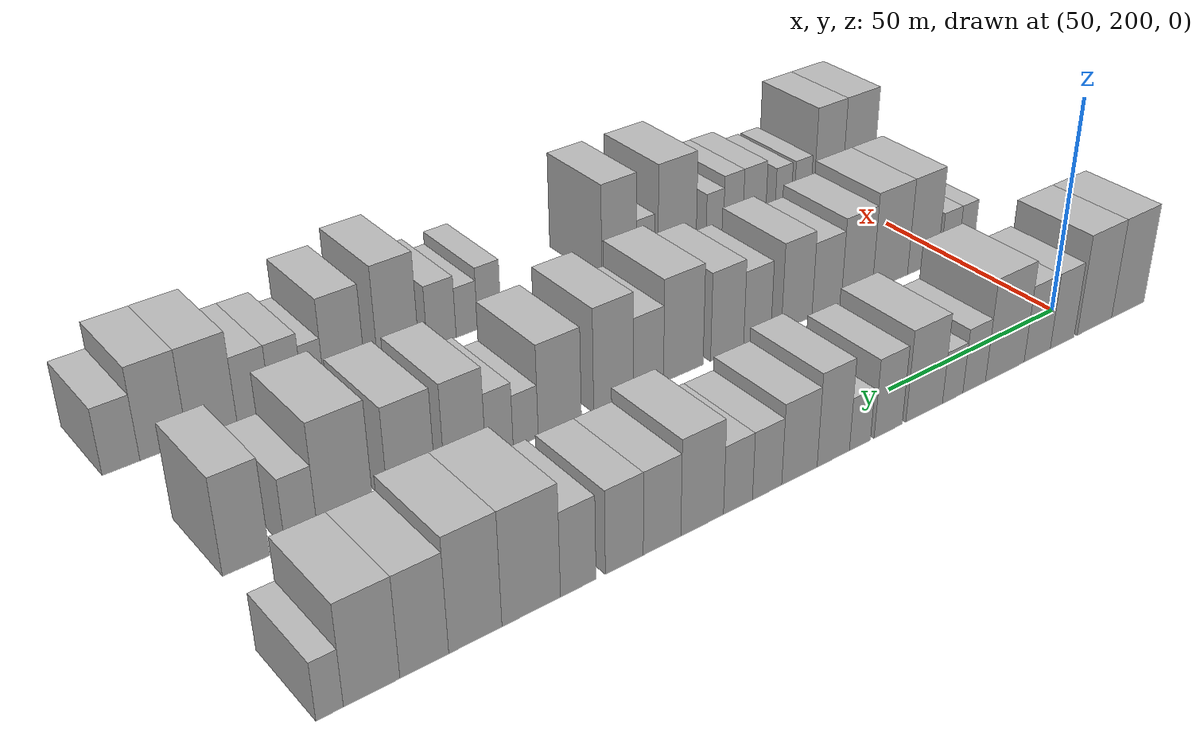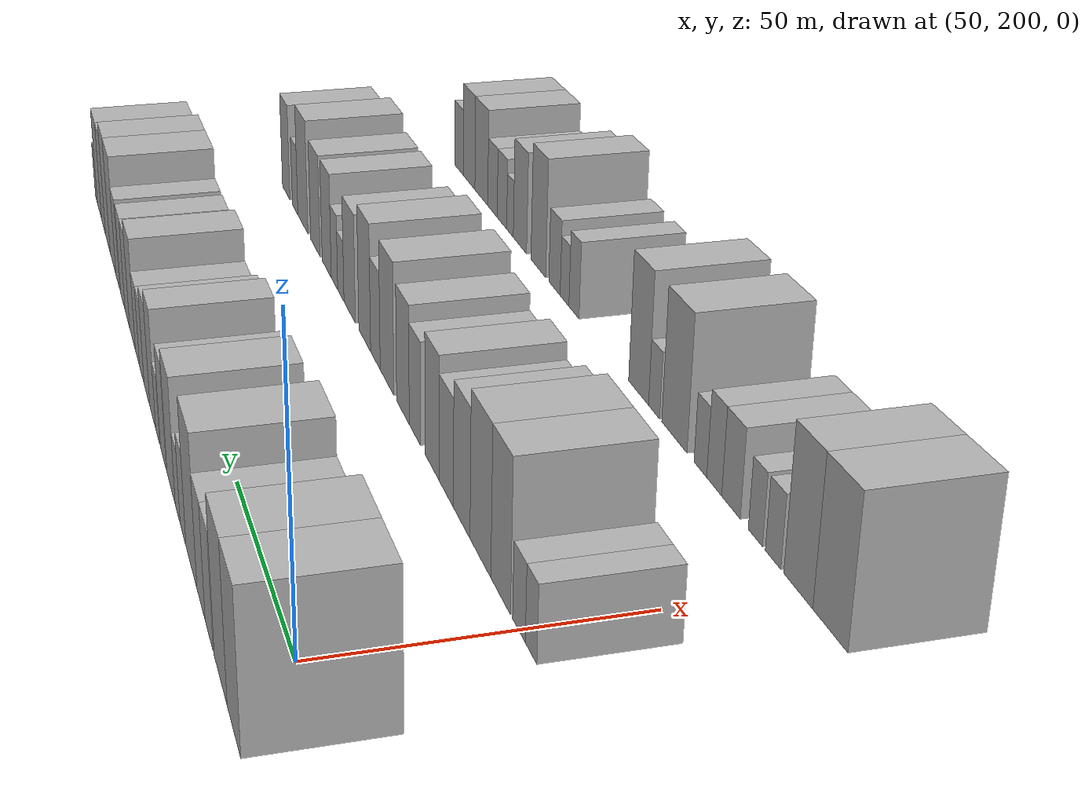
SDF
<sdf version="1.6">
 <world name="default">
  <model name="building_67">
   <static>1</static>
   <pose>50.0000 186.9651 0 0.000000 0.000000 0.000000</pose>
   <link name="link">
    <pose>0 0 12.00 0 0 0</pose>
    <collision name="collision"><geometry><box><size>20.0000 11.0808 24.0000</size></box></geometry></collision>
    <visual name="visual">
     <cast_shadows>0</cast_shadows>
     <geometry><box><size>20.0000 11.0808 24.0000</size></box></geometry>
     <material>
      <script>
       <uri>model://HANNAS_wall/materials/scripts</uri>
       <uri>model://HANNAS_wall/materials/textures</uri>
       <name>vrc/HANNAS_wall</name>
      </script>
     </material>
    </visual>
   </link>
  </model>
  <model name="building_68">
   <static>1</static>
   <pose>50.0000 198.2127 0 0.000000 0.000000 0.000000</pose>
   <link name="link">
    <pose>0 0 12.00 0 0 0</pose>
    <collision name="collision"><geometry><box><size>20.0000 11.4144 24.0000</size></box></geometry></collision>
    <visual name="visual">
     <cast_shadows>0</cast_shadows>
     <geometry><box><size>20.0000 11.4144 24.0000</size></box></geometry>
     <material>
      <script>
       <uri>model://HANNAS_wall/materials/scripts</uri>
       <uri>model://HANNAS_wall/materials/textures</uri>
       <name>vrc/HANNAS_wall</name>
      </script>
     </material>
    </visual>
   </link>
  </model>
  <model name="building_69">
   <static>1</static>
   <pose>50.0000 208.7567 0 0.000000 0.000000 0.000000</pose>
   <link name="link">
    <pose>0 0 9.00 0 0 0</pose>
    <collision name="collision"><geometry><box><size>20.0000 7.6735 18.0000</size></box></geometry></collision>
    <visual name="visual">
     <cast_shadows>0</cast_shadows>
     <geometry><box><size>20.0000 7.6735 18.0000</size></box></geometry>
     <material>
      <script>
       <uri>model://HANNAS_wall/materials/scripts</uri>
       <uri>model://HANNAS_wall/materials/textures</uri>
       <name>vrc/HANNAS_wall</name>
      </script>
     </material>
    </visual>
   </link>
  </model>
  <model name="building_70">
   <static>1</static>
   <pose>50.0000 216.6942 0 0.000000 0.000000 0.000000</pose>
   <link name="link">
    <pose>0 0 9.00 0 0 0</pose>
    <collision name="collision"><geometry><box><size>20.0000 8.2016 18.0000</size></box></geometry></collision>
    <visual name="visual">
     <cast_shadows>0</cast_shadows>
     <geometry><box><size>20.0000 8.2016 18.0000</size></box></geometry>
     <material>
      <script>
       <uri>model://HANNAS_wall/materials/scripts</uri>
       <uri>model://HANNAS_wall/materials/textures</uri>
       <name>vrc/HANNAS_wall</name>
      </script>
     </material>
    </visual>
   </link>
  </model>
  <model name="building_71">
   <static>1</static>
   <pose>50.0000 226.6920 0 0.000000 0.000000 0.000000</pose>
   <link name="link">
    <pose>0 0 12.00 0 0 0</pose>
    <collision name="collision"><geometry><box><size>20.0000 11.7941 24.0000</size></box></geometry></collision>
    <visual name="visual">
     <cast_shadows>0</cast_shadows>
     <geometry><box><size>20.0000 11.7941 24.0000</size></box></geometry>
     <material>
      <script>
       <uri>model://HANNAS_wall/materials/scripts</uri>
       <uri>model://HANNAS_wall/materials/textures</uri>
       <name>vrc/HANNAS_wall</name>
      </script>
     </material>
    </visual>
   </link>
  </model>
  <model name="building_72">
   <static>1</static>
   <pose>50.0000 235.9227 0 0.000000 0.000000 0.000000</pose>
   <link name="link">
    <pose>0 0 7.50 0 0 0</pose>
    <collision name="collision"><geometry><box><size>20.0000 6.6673 15.0000</size></box></geometry></collision>
    <visual name="visual">
     <cast_shadows>0</cast_shadows>
     <geometry><box><size>20.0000 6.6673 15.0000</size></box></geometry>
     <material>
      <script>
       <uri>model://HANNAS_wall/materials/scripts</uri>
       <uri>model://HANNAS_wall/materials/textures</uri>
       <name>vrc/HANNAS_wall</name>
      </script>
     </material>
    </visual>
   </link>
  </model>
  <model name="building_73">
   <static>1</static>
   <pose>50.0000 242.2186 0 0.000000 0.000000 0.000000</pose>
   <link name="link">
    <pose>0 0 6.00 0 0 0</pose>
    <collision name="collision"><geometry><box><size>20.0000 5.9244 12.0000</size></box></geometry></collision>
    <visual name="visual">
     <cast_shadows>0</cast_shadows>
     <geometry><box><size>20.0000 5.9244 12.0000</size></box></geometry>
     <material>
      <script>
       <uri>model://HANNAS_wall/materials/scripts</uri>
       <uri>model://HANNAS_wall/materials/textures</uri>
       <name>vrc/HANNAS_wall</name>
      </script>
     </material>
    </visual>
   </link>
  </model>
  <model name="building_74">
   <static>1</static>
   <pose>50.0000 250.3440 0 0.000000 0.000000 0.000000</pose>
   <link name="link">
    <pose>0 0 10.50 0 0 0</pose>
    <collision name="collision"><geometry><box><size>20.0000 10.3265 21.0000</size></box></geometry></collision>
    <visual name="visual">
     <cast_shadows>0</cast_shadows>
     <geometry><box><size>20.0000 10.3265 21.0000</size></box></geometry>
     <material>
      <script>
       <uri>model://HANNAS_wall/materials/scripts</uri>
       <uri>model://HANNAS_wall/materials/textures</uri>
       <name>vrc/HANNAS_wall</name>
      </script>
     </material>
    </visual>
   </link>
  </model>
  <model name="building_75">
   <static>1</static>
   <pose>50.0000 260.3476 0 0.000000 0.000000 0.000000</pose>
   <link name="link">
    <pose>0 0 9.00 0 0 0</pose>
    <collision name="collision"><geometry><box><size>20.0000 7.6806 18.0000</size></box></geometry></collision>
    <visual name="visual">
     <cast_shadows>0</cast_shadows>
     <geometry><box><size>20.0000 7.6806 18.0000</size></box></geometry>
     <material>
      <script>
       <uri>model://HANNAS_wall/materials/scripts</uri>
       <uri>model://HANNAS_wall/materials/textures</uri>
       <name>vrc/HANNAS_wall</name>
      </script>
     </material>
    </visual>
   </link>
  </model>
  <model name="building_76">
   <static>1</static>
   <pose>50.0000 267.9859 0 0.000000 0.000000 0.000000</pose>
   <link name="link">
    <pose>0 0 6.00 0 0 0</pose>
    <collision name="collision"><geometry><box><size>20.0000 5.5958 12.0000</size></box></geometry></collision>
    <visual name="visual">
     <cast_shadows>0</cast_shadows>
     <geometry><box><size>20.0000 5.5958 12.0000</size></box></geometry>
     <material>
      <script>
       <uri>model://HANNAS_wall/materials/scripts</uri>
       <uri>model://HANNAS_wall/materials/textures</uri>
       <name>vrc/HANNAS_wall</name>
      </script>
     </material>
    </visual>
   </link>
  </model>
  <model name="building_77">
   <static>1</static>
   <pose>50.0000 274.9859 0 0.000000 0.000000 0.000000</pose>
   <link name="link">
    <pose>0 0 10.50 0 0 0</pose>
    <collision name="collision"><geometry><box><size>20.0000 8.4042 21.0000</size></box></geometry></collision>
    <visual name="visual">
     <cast_shadows>0</cast_shadows>
     <geometry><box><size>20.0000 8.4042 21.0000</size></box></geometry>
     <material>
      <script>
       <uri>model://HANNAS_wall/materials/scripts</uri>
       <uri>model://HANNAS_wall/materials/textures</uri>
       <name>vrc/HANNAS_wall</name>
      </script>
     </material>
    </visual>
   </link>
  </model>
  <model name="building_78">
   <static>1</static>
   <pose>50.0000 283.6722 0 0.000000 0.000000 0.000000</pose>
   <link name="link">
    <pose>0 0 9.00 0 0 0</pose>
    <collision name="collision"><geometry><box><size>20.0000 8.9685 18.0000</size></box></geometry></collision>
    <visual name="visual">
     <cast_shadows>0</cast_shadows>
     <geometry><box><size>20.0000 8.9685 18.0000</size></box></geometry>
     <material>
      <script>
       <uri>model://HANNAS_wall/materials/scripts</uri>
       <uri>model://HANNAS_wall/materials/textures</uri>
       <name>vrc/HANNAS_wall</name>
      </script>
     </material>
    </visual>
   </link>
  </model>
  <model name="building_79">
   <static>1</static>
   <pose>50.0000 291.7496 0 0.000000 0.000000 0.000000</pose>
   <link name="link">
    <pose>0 0 7.50 0 0 0</pose>
    <collision name="collision"><geometry><box><size>20.0000 7.1863 15.0000</size></box></geometry></collision>
    <visual name="visual">
     <cast_shadows>0</cast_shadows>
     <geometry><box><size>20.0000 7.1863 15.0000</size></box></geometry>
     <material>
      <script>
       <uri>model://HANNAS_wall/materials/scripts</uri>
       <uri>model://HANNAS_wall/materials/textures</uri>
       <name>vrc/HANNAS_wall</name>
      </script>
     </material>
    </visual>
   </link>
  </model>
  <model name="building_80">
   <static>1</static>
   <pose>50.0000 298.8156 0 0.000000 0.000000 0.000000</pose>
   <link name="link">
    <pose>0 0 7.50 0 0 0</pose>
    <collision name="collision"><geometry><box><size>20.0000 6.9456 15.0000</size></box></geometry></collision>
    <visual name="visual">
     <cast_shadows>0</cast_shadows>
     <geometry><box><size>20.0000 6.9456 15.0000</size></box></geometry>
     <material>
      <script>
       <uri>model://HANNAS_wall/materials/scripts</uri>
       <uri>model://HANNAS_wall/materials/textures</uri>
       <name>vrc/HANNAS_wall</name>
      </script>
     </material>
    </visual>
   </link>
  </model>
  <model name="building_81">
   <static>1</static>
   <pose>50.0000 307.2596 0 0.000000 0.000000 0.000000</pose>
   <link name="link">
    <pose>0 0 10.50 0 0 0</pose>
    <collision name="collision"><geometry><box><size>20.0000 9.9424 21.0000</size></box></geometry></collision>
    <visual name="visual">
     <cast_shadows>0</cast_shadows>
     <geometry><box><size>20.0000 9.9424 21.0000</size></box></geometry>
     <material>
      <script>
       <uri>model://HANNAS_wall/materials/scripts</uri>
       <uri>model://HANNAS_wall/materials/textures</uri>
       <name>vrc/HANNAS_wall</name>
      </script>
     </material>
    </visual>
   </link>
  </model>
  <model name="building_82">
   <static>1</static>
   <pose>50.0000 316.4523 0 0.000000 0.000000 0.000000</pose>
   <link name="link">
    <pose>0 0 9.00 0 0 0</pose>
    <collision name="collision"><geometry><box><size>20.0000 8.4429 18.0000</size></box></geometry></collision>
    <visual name="visual">
     <cast_shadows>0</cast_shadows>
     <geometry><box><size>20.0000 8.4429 18.0000</size></box></geometry>
     <material>
      <script>
       <uri>model://HANNAS_wall/materials/scripts</uri>
       <uri>model://HANNAS_wall/materials/textures</uri>
       <name>vrc/HANNAS_wall</name>
      </script>
     </material>
    </visual>
   </link>
  </model>
  <model name="building_83">
   <static>1</static>
   <pose>50.0000 324.8165 0 0.000000 0.000000 0.000000</pose>
   <link name="link">
    <pose>0 0 9.00 0 0 0</pose>
    <collision name="collision"><geometry><box><size>20.0000 8.2856 18.0000</size></box></geometry></collision>
    <visual name="visual">
     <cast_shadows>0</cast_shadows>
     <geometry><box><size>20.0000 8.2856 18.0000</size></box></geometry>
     <material>
      <script>
       <uri>model://HANNAS_wall/materials/scripts</uri>
       <uri>model://HANNAS_wall/materials/textures</uri>
       <name>vrc/HANNAS_wall</name>
      </script>
     </material>
    </visual>
   </link>
  </model>
  <model name="building_84">
   <static>1</static>
   <pose>50.0000 334.6957 0 0.000000 0.000000 0.000000</pose>
   <link name="link">
    <pose>0 0 9.00 0 0 0</pose>
    <collision name="collision"><geometry><box><size>20.0000 7.4728 18.0000</size></box></geometry></collision>
    <visual name="visual">
     <cast_shadows>0</cast_shadows>
     <geometry><box><size>20.0000 7.4728 18.0000</size></box></geometry>
     <material>
      <script>
       <uri>model://HANNAS_wall/materials/scripts</uri>
       <uri>model://HANNAS_wall/materials/textures</uri>
       <name>vrc/HANNAS_wall</name>
      </script>
     </material>
    </visual>
   </link>
  </model>
  <model name="building_85">
   <static>1</static>
   <pose>50.0000 344.3780 0 0.000000 0.000000 0.000000</pose>
   <link name="link">
    <pose>0 0 12.00 0 0 0</pose>
    <collision name="collision"><geometry><box><size>20.0000 11.8917 24.0000</size></box></geometry></collision>
    <visual name="visual">
     <cast_shadows>0</cast_shadows>
     <geometry><box><size>20.0000 11.8917 24.0000</size></box></geometry>
     <material>
      <script>
       <uri>model://HANNAS_wall/materials/scripts</uri>
       <uri>model://HANNAS_wall/materials/textures</uri>
       <name>vrc/HANNAS_wall</name>
      </script>
     </material>
    </visual>
   </link>
  </model>
  <model name="building_86">
   <static>1</static>
   <pose>50.0000 355.5039 0 0.000000 0.000000 0.000000</pose>
   <link name="link">
    <pose>0 0 12.00 0 0 0</pose>
    <collision name="collision"><geometry><box><size>20.0000 10.3599 24.0000</size></box></geometry></collision>
    <visual name="visual">
     <cast_shadows>0</cast_shadows>
     <geometry><box><size>20.0000 10.3599 24.0000</size></box></geometry>
     <material>
      <script>
       <uri>model://HANNAS_wall/materials/scripts</uri>
       <uri>model://HANNAS_wall/materials/textures</uri>
       <name>vrc/HANNAS_wall</name>
      </script>
     </material>
    </visual>
   </link>
  </model>
  <model name="building_87">
   <static>1</static>
   <pose>50.0000 365.2584 0 0.000000 0.000000 0.000000</pose>
   <link name="link">
    <pose>0 0 10.50 0 0 0</pose>
    <collision name="collision"><geometry><box><size>20.0000 9.1492 21.0000</size></box></geometry></collision>
    <visual name="visual">
     <cast_shadows>0</cast_shadows>
     <geometry><box><size>20.0000 9.1492 21.0000</size></box></geometry>
     <material>
      <script>
       <uri>model://HANNAS_wall/materials/scripts</uri>
       <uri>model://HANNAS_wall/materials/textures</uri>
       <name>vrc/HANNAS_wall</name>
      </script>
     </material>
    </visual>
   </link>
  </model>
  <model name="building_88">
   <static>1</static>
   <pose>50.0000 374.9154 0 0.000000 0.000000 0.000000</pose>
   <link name="link">
    <pose>0 0 10.50 0 0 0</pose>
    <collision name="collision"><geometry><box><size>20.0000 10.1648 21.0000</size></box></geometry></collision>
    <visual name="visual">
     <cast_shadows>0</cast_shadows>
     <geometry><box><size>20.0000 10.1648 21.0000</size></box></geometry>
     <material>
      <script>
       <uri>model://HANNAS_wall/materials/scripts</uri>
       <uri>model://HANNAS_wall/materials/textures</uri>
       <name>vrc/HANNAS_wall</name>
      </script>
     </material>
    </visual>
   </link>
  </model>
  <model name="building_89">
   <static>1</static>
   <pose>50.0000 382.4224 0 0.000000 0.000000 0.000000</pose>
   <link name="link">
    <pose>0 0 6.00 0 0 0</pose>
    <collision name="collision"><geometry><box><size>20.0000 4.8493 12.0000</size></box></geometry></collision>
    <visual name="visual">
     <cast_shadows>0</cast_shadows>
     <geometry><box><size>20.0000 4.8493 12.0000</size></box></geometry>
     <material>
      <script>
       <uri>model://HANNAS_wall/materials/scripts</uri>
       <uri>model://HANNAS_wall/materials/textures</uri>
       <name>vrc/HANNAS_wall</name>
      </script>
     </material>
    </visual>
   </link>
  </model>
  <model name="building_156">
   <static>1</static>
   <pose>90.0000 194.3458 0 0.000000 0.000000 0.000000</pose>
   <link name="link">
    <pose>0 0 6.00 0 0 0</pose>
    <collision name="collision"><geometry><box><size>20.0000 5.2056 12.0000</size></box></geometry></collision>
    <visual name="visual">
     <cast_shadows>0</cast_shadows>
     <geometry><box><size>20.0000 5.2056 12.0000</size></box></geometry>
     <material>
      <script>
       <uri>model://HANNAS_wall/materials/scripts</uri>
       <uri>model://HANNAS_wall/materials/textures</uri>
       <name>vrc/HANNAS_wall</name>
      </script>
     </material>
    </visual>
   </link>
  </model>
  <model name="building_157">
   <static>1</static>
   <pose>90.0000 199.9210 0 0.000000 0.000000 0.000000</pose>
   <link name="link">
    <pose>0 0 6.00 0 0 0</pose>
    <collision name="collision"><geometry><box><size>20.0000 5.9448 12.0000</size></box></geometry></collision>
    <visual name="visual">
     <cast_shadows>0</cast_shadows>
     <geometry><box><size>20.0000 5.9448 12.0000</size></box></geometry>
     <material>
      <script>
       <uri>model://HANNAS_wall/materials/scripts</uri>
       <uri>model://HANNAS_wall/materials/textures</uri>
       <name>vrc/HANNAS_wall</name>
      </script>
     </material>
    </visual>
   </link>
  </model>
  <model name="building_158">
   <static>1</static>
   <pose>90.0000 208.7747 0 0.000000 0.000000 0.000000</pose>
   <link name="link">
    <pose>0 0 12.00 0 0 0</pose>
    <collision name="collision"><geometry><box><size>20.0000 9.7626 24.0000</size></box></geometry></collision>
    <visual name="visual">
     <cast_shadows>0</cast_shadows>
     <geometry><box><size>20.0000 9.7626 24.0000</size></box></geometry>
     <material>
      <script>
       <uri>model://HANNAS_wall/materials/scripts</uri>
       <uri>model://HANNAS_wall/materials/textures</uri>
       <name>vrc/HANNAS_wall</name>
      </script>
     </material>
    </visual>
   </link>
  </model>
  <model name="building_159">
   <static>1</static>
   <pose>90.0000 219.2086 0 0.000000 0.000000 0.000000</pose>
   <link name="link">
    <pose>0 0 12.00 0 0 0</pose>
    <collision name="collision"><geometry><box><size>20.0000 11.1052 24.0000</size></box></geometry></collision>
    <visual name="visual">
     <cast_shadows>0</cast_shadows>
     <geometry><box><size>20.0000 11.1052 24.0000</size></box></geometry>
     <material>
      <script>
       <uri>model://HANNAS_wall/materials/scripts</uri>
       <uri>model://HANNAS_wall/materials/textures</uri>
       <name>vrc/HANNAS_wall</name>
      </script>
     </material>
    </visual>
   </link>
  </model>
  <model name="building_160">
   <static>1</static>
   <pose>90.0000 229.5092 0 0.000000 0.000000 0.000000</pose>
   <link name="link">
    <pose>0 0 10.50 0 0 0</pose>
    <collision name="collision"><geometry><box><size>20.0000 9.4959 21.0000</size></box></geometry></collision>
    <visual name="visual">
     <cast_shadows>0</cast_shadows>
     <geometry><box><size>20.0000 9.4959 21.0000</size></box></geometry>
     <material>
      <script>
       <uri>model://HANNAS_wall/materials/scripts</uri>
       <uri>model://HANNAS_wall/materials/textures</uri>
       <name>vrc/HANNAS_wall</name>
      </script>
     </material>
    </visual>
   </link>
  </model>
  <model name="building_161">
   <static>1</static>
   <pose>90.0000 238.6133 0 0.000000 0.000000 0.000000</pose>
   <link name="link">
    <pose>0 0 9.00 0 0 0</pose>
    <collision name="collision"><geometry><box><size>20.0000 8.7124 18.0000</size></box></geometry></collision>
    <visual name="visual">
     <cast_shadows>0</cast_shadows>
     <geometry><box><size>20.0000 8.7124 18.0000</size></box></geometry>
     <material>
      <script>
       <uri>model://HANNAS_wall/materials/scripts</uri>
       <uri>model://HANNAS_wall/materials/textures</uri>
       <name>vrc/HANNAS_wall</name>
      </script>
     </material>
    </visual>
   </link>
  </model>
  <model name="building_162">
   <static>1</static>
   <pose>90.0000 247.4016 0 0.000000 0.000000 0.000000</pose>
   <link name="link">
    <pose>0 0 10.50 0 0 0</pose>
    <collision name="collision"><geometry><box><size>20.0000 8.8642 21.0000</size></box></geometry></collision>
    <visual name="visual">
     <cast_shadows>0</cast_shadows>
     <geometry><box><size>20.0000 8.8642 21.0000</size></box></geometry>
     <material>
      <script>
       <uri>model://HANNAS_wall/materials/scripts</uri>
       <uri>model://HANNAS_wall/materials/textures</uri>
       <name>vrc/HANNAS_wall</name>
      </script>
     </material>
    </visual>
   </link>
  </model>
  <model name="building_163">
   <static>1</static>
   <pose>90.0000 258.6544 0 0.000000 0.000000 0.000000</pose>
   <link name="link">
    <pose>0 0 9.00 0 0 0</pose>
    <collision name="collision"><geometry><box><size>20.0000 7.6414 18.0000</size></box></geometry></collision>
    <visual name="visual">
     <cast_shadows>0</cast_shadows>
     <geometry><box><size>20.0000 7.6414 18.0000</size></box></geometry>
     <material>
      <script>
       <uri>model://HANNAS_wall/materials/scripts</uri>
       <uri>model://HANNAS_wall/materials/textures</uri>
       <name>vrc/HANNAS_wall</name>
      </script>
     </material>
    </visual>
   </link>
  </model>
  <model name="building_164">
   <static>1</static>
   <pose>90.0000 266.9931 0 0.000000 0.000000 0.000000</pose>
   <link name="link">
    <pose>0 0 10.50 0 0 0</pose>
    <collision name="collision"><geometry><box><size>20.0000 9.0359 21.0000</size></box></geometry></collision>
    <visual name="visual">
     <cast_shadows>0</cast_shadows>
     <geometry><box><size>20.0000 9.0359 21.0000</size></box></geometry>
     <material>
      <script>
       <uri>model://HANNAS_wall/materials/scripts</uri>
       <uri>model://HANNAS_wall/materials/textures</uri>
       <name>vrc/HANNAS_wall</name>
      </script>
     </material>
    </visual>
   </link>
  </model>
  <model name="building_165">
   <static>1</static>
   <pose>90.0000 278.7299 0 0.000000 0.000000 0.000000</pose>
   <link name="link">
    <pose>0 0 12.00 0 0 0</pose>
    <collision name="collision"><geometry><box><size>20.0000 10.4376 24.0000</size></box></geometry></collision>
    <visual name="visual">
     <cast_shadows>0</cast_shadows>
     <geometry><box><size>20.0000 10.4376 24.0000</size></box></geometry>
     <material>
      <script>
       <uri>model://HANNAS_wall/materials/scripts</uri>
       <uri>model://HANNAS_wall/materials/textures</uri>
       <name>vrc/HANNAS_wall</name>
      </script>
     </material>
    </visual>
   </link>
  </model>
  <model name="building_166">
   <static>1</static>
   <pose>90.0000 287.7935 0 0.000000 0.000000 0.000000</pose>
   <link name="link">
    <pose>0 0 9.00 0 0 0</pose>
    <collision name="collision"><geometry><box><size>20.0000 7.6896 18.0000</size></box></geometry></collision>
    <visual name="visual">
     <cast_shadows>0</cast_shadows>
     <geometry><box><size>20.0000 7.6896 18.0000</size></box></geometry>
     <material>
      <script>
       <uri>model://HANNAS_wall/materials/scripts</uri>
       <uri>model://HANNAS_wall/materials/textures</uri>
       <name>vrc/HANNAS_wall</name>
      </script>
     </material>
    </visual>
   </link>
  </model>
  <model name="building_167">
   <static>1</static>
   <pose>90.0000 296.6002 0 0.000000 0.000000 0.000000</pose>
   <link name="link">
    <pose>0 0 12.00 0 0 0</pose>
    <collision name="collision"><geometry><box><size>20.0000 9.9238 24.0000</size></box></geometry></collision>
    <visual name="visual">
     <cast_shadows>0</cast_shadows>
     <geometry><box><size>20.0000 9.9238 24.0000</size></box></geometry>
     <material>
      <script>
       <uri>model://HANNAS_wall/materials/scripts</uri>
       <uri>model://HANNAS_wall/materials/textures</uri>
       <name>vrc/HANNAS_wall</name>
      </script>
     </material>
    </visual>
   </link>
  </model>
  <model name="building_168">
   <static>1</static>
   <pose>90.0000 309.7081 0 0.000000 0.000000 0.000000</pose>
   <link name="link">
    <pose>0 0 10.50 0 0 0</pose>
    <collision name="collision"><geometry><box><size>20.0000 10.2920 21.0000</size></box></geometry></collision>
    <visual name="visual">
     <cast_shadows>0</cast_shadows>
     <geometry><box><size>20.0000 10.2920 21.0000</size></box></geometry>
     <material>
      <script>
       <uri>model://HANNAS_wall/materials/scripts</uri>
       <uri>model://HANNAS_wall/materials/textures</uri>
       <name>vrc/HANNAS_wall</name>
      </script>
     </material>
    </visual>
   </link>
  </model>
  <model name="building_169">
   <static>1</static>
   <pose>90.0000 317.7745 0 0.000000 0.000000 0.000000</pose>
   <link name="link">
    <pose>0 0 6.00 0 0 0</pose>
    <collision name="collision"><geometry><box><size>20.0000 5.8407 12.0000</size></box></geometry></collision>
    <visual name="visual">
     <cast_shadows>0</cast_shadows>
     <geometry><box><size>20.0000 5.8407 12.0000</size></box></geometry>
     <material>
      <script>
       <uri>model://HANNAS_wall/materials/scripts</uri>
       <uri>model://HANNAS_wall/materials/textures</uri>
       <name>vrc/HANNAS_wall</name>
      </script>
     </material>
    </visual>
   </link>
  </model>
  <model name="building_170">
   <static>1</static>
   <pose>90.0000 323.8109 0 0.000000 0.000000 0.000000</pose>
   <link name="link">
    <pose>0 0 7.50 0 0 0</pose>
    <collision name="collision"><geometry><box><size>20.0000 6.2321 15.0000</size></box></geometry></collision>
    <visual name="visual">
     <cast_shadows>0</cast_shadows>
     <geometry><box><size>20.0000 6.2321 15.0000</size></box></geometry>
     <material>
      <script>
       <uri>model://HANNAS_wall/materials/scripts</uri>
       <uri>model://HANNAS_wall/materials/textures</uri>
       <name>vrc/HANNAS_wall</name>
      </script>
     </material>
    </visual>
   </link>
  </model>
  <model name="building_171">
   <static>1</static>
   <pose>90.0000 331.5055 0 0.000000 0.000000 0.000000</pose>
   <link name="link">
    <pose>0 0 10.50 0 0 0</pose>
    <collision name="collision"><geometry><box><size>20.0000 9.1571 21.0000</size></box></geometry></collision>
    <visual name="visual">
     <cast_shadows>0</cast_shadows>
     <geometry><box><size>20.0000 9.1571 21.0000</size></box></geometry>
     <material>
      <script>
       <uri>model://HANNAS_wall/materials/scripts</uri>
       <uri>model://HANNAS_wall/materials/textures</uri>
       <name>vrc/HANNAS_wall</name>
      </script>
     </material>
    </visual>
   </link>
  </model>
  <model name="building_172">
   <static>1</static>
   <pose>90.0000 343.1445 0 0.000000 0.000000 0.000000</pose>
   <link name="link">
    <pose>0 0 10.50 0 0 0</pose>
    <collision name="collision"><geometry><box><size>20.0000 10.1210 21.0000</size></box></geometry></collision>
    <visual name="visual">
     <cast_shadows>0</cast_shadows>
     <geometry><box><size>20.0000 10.1210 21.0000</size></box></geometry>
     <material>
      <script>
       <uri>model://HANNAS_wall/materials/scripts</uri>
       <uri>model://HANNAS_wall/materials/textures</uri>
       <name>vrc/HANNAS_wall</name>
      </script>
     </material>
    </visual>
   </link>
  </model>
  <model name="building_173">
   <static>1</static>
   <pose>90.0000 356.8738 0 0.000000 0.000000 0.000000</pose>
   <link name="link">
    <pose>0 0 12.00 0 0 0</pose>
    <collision name="collision"><geometry><box><size>20.0000 11.3375 24.0000</size></box></geometry></collision>
    <visual name="visual">
     <cast_shadows>0</cast_shadows>
     <geometry><box><size>20.0000 11.3375 24.0000</size></box></geometry>
     <material>
      <script>
       <uri>model://HANNAS_wall/materials/scripts</uri>
       <uri>model://HANNAS_wall/materials/textures</uri>
       <name>vrc/HANNAS_wall</name>
      </script>
     </material>
    </visual>
   </link>
  </model>
  <model name="building_174">
   <static>1</static>
   <pose>90.0000 365.7602 0 0.000000 0.000000 0.000000</pose>
   <link name="link">
    <pose>0 0 7.50 0 0 0</pose>
    <collision name="collision"><geometry><box><size>20.0000 6.4354 15.0000</size></box></geometry></collision>
    <visual name="visual">
     <cast_shadows>0</cast_shadows>
     <geometry><box><size>20.0000 6.4354 15.0000</size></box></geometry>
     <material>
      <script>
       <uri>model://HANNAS_wall/materials/scripts</uri>
       <uri>model://HANNAS_wall/materials/textures</uri>
       <name>vrc/HANNAS_wall</name>
      </script>
     </material>
    </visual>
   </link>
  </model>
  <model name="building_175">
   <static>1</static>
   <pose>90.0000 376.4857 0 0.000000 0.000000 0.000000</pose>
   <link name="link">
    <pose>0 0 10.50 0 0 0</pose>
    <collision name="collision"><geometry><box><size>20.0000 9.0157 21.0000</size></box></geometry></collision>
    <visual name="visual">
     <cast_shadows>0</cast_shadows>
     <geometry><box><size>20.0000 9.0157 21.0000</size></box></geometry>
     <material>
      <script>
       <uri>model://HANNAS_wall/materials/scripts</uri>
       <uri>model://HANNAS_wall/materials/textures</uri>
       <name>vrc/HANNAS_wall</name>
      </script>
     </material>
    </visual>
   </link>
  </model>
  <model name="building_236">
   <static>1</static>
   <pose>130.0000 189.7986 0 0.000000 0.000000 0.000000</pose>
   <link name="link">
    <pose>0 0 12.00 0 0 0</pose>
    <collision name="collision"><geometry><box><size>20.0000 10.8643 24.0000</size></box></geometry></collision>
    <visual name="visual">
     <cast_shadows>0</cast_shadows>
     <geometry><box><size>20.0000 10.8643 24.0000</size></box></geometry>
     <material>
      <script>
       <uri>model://HANNAS_wall/materials/scripts</uri>
       <uri>model://HANNAS_wall/materials/textures</uri>
       <name>vrc/HANNAS_wall</name>
      </script>
     </material>
    </visual>
   </link>
  </model>
  <model name="building_237">
   <static>1</static>
   <pose>130.0000 200.0447 0 0.000000 0.000000 0.000000</pose>
   <link name="link">
    <pose>0 0 12.00 0 0 0</pose>
    <collision name="collision"><geometry><box><size>20.0000 9.6279 24.0000</size></box></geometry></collision>
    <visual name="visual">
     <cast_shadows>0</cast_shadows>
     <geometry><box><size>20.0000 9.6279 24.0000</size></box></geometry>
     <material>
      <script>
       <uri>model://HANNAS_wall/materials/scripts</uri>
       <uri>model://HANNAS_wall/materials/textures</uri>
       <name>vrc/HANNAS_wall</name>
      </script>
     </material>
    </visual>
   </link>
  </model>
  <model name="building_238">
   <static>1</static>
   <pose>130.0000 208.5767 0 0.000000 0.000000 0.000000</pose>
   <link name="link">
    <pose>0 0 6.00 0 0 0</pose>
    <collision name="collision"><geometry><box><size>20.0000 5.4361 12.0000</size></box></geometry></collision>
    <visual name="visual">
     <cast_shadows>0</cast_shadows>
     <geometry><box><size>20.0000 5.4361 12.0000</size></box></geometry>
     <material>
      <script>
       <uri>model://HANNAS_wall/materials/scripts</uri>
       <uri>model://HANNAS_wall/materials/textures</uri>
       <name>vrc/HANNAS_wall</name>
      </script>
     </material>
    </visual>
   </link>
  </model>
  <model name="building_239">
   <static>1</static>
   <pose>130.0000 214.8916 0 0.000000 0.000000 0.000000</pose>
   <link name="link">
    <pose>0 0 6.00 0 0 0</pose>
    <collision name="collision"><geometry><box><size>20.0000 5.1936 12.0000</size></box></geometry></collision>
    <visual name="visual">
     <cast_shadows>0</cast_shadows>
     <geometry><box><size>20.0000 5.1936 12.0000</size></box></geometry>
     <material>
      <script>
       <uri>model://HANNAS_wall/materials/scripts</uri>
       <uri>model://HANNAS_wall/materials/textures</uri>
       <name>vrc/HANNAS_wall</name>
      </script>
     </material>
    </visual>
   </link>
  </model>
  <model name="building_240">
   <static>1</static>
   <pose>130.0000 224.0974 0 0.000000 0.000000 0.000000</pose>
   <link name="link">
    <pose>0 0 7.50 0 0 0</pose>
    <collision name="collision"><geometry><box><size>20.0000 7.2181 15.0000</size></box></geometry></collision>
    <visual name="visual">
     <cast_shadows>0</cast_shadows>
     <geometry><box><size>20.0000 7.2181 15.0000</size></box></geometry>
     <material>
      <script>
       <uri>model://HANNAS_wall/materials/scripts</uri>
       <uri>model://HANNAS_wall/materials/textures</uri>
       <name>vrc/HANNAS_wall</name>
      </script>
     </material>
    </visual>
   </link>
  </model>
  <model name="building_241">
   <static>1</static>
   <pose>130.0000 230.7337 0 0.000000 0.000000 0.000000</pose>
   <link name="link">
    <pose>0 0 7.50 0 0 0</pose>
    <collision name="collision"><geometry><box><size>20.0000 6.0546 15.0000</size></box></geometry></collision>
    <visual name="visual">
     <cast_shadows>0</cast_shadows>
     <geometry><box><size>20.0000 6.0546 15.0000</size></box></geometry>
     <material>
      <script>
       <uri>model://HANNAS_wall/materials/scripts</uri>
       <uri>model://HANNAS_wall/materials/textures</uri>
       <name>vrc/HANNAS_wall</name>
      </script>
     </material>
    </visual>
   </link>
  </model>
  <model name="building_242">
   <static>1</static>
   <pose>130.0000 236.4104 0 0.000000 0.000000 0.000000</pose>
   <link name="link">
    <pose>0 0 6.00 0 0 0</pose>
    <collision name="collision"><geometry><box><size>20.0000 5.2987 12.0000</size></box></geometry></collision>
    <visual name="visual">
     <cast_shadows>0</cast_shadows>
     <geometry><box><size>20.0000 5.2987 12.0000</size></box></geometry>
     <material>
      <script>
       <uri>model://HANNAS_wall/materials/scripts</uri>
       <uri>model://HANNAS_wall/materials/textures</uri>
       <name>vrc/HANNAS_wall</name>
      </script>
     </material>
    </visual>
   </link>
  </model>
  <model name="building_243">
   <static>1</static>
   <pose>130.0000 247.7132 0 0.000000 0.000000 0.000000</pose>
   <link name="link">
    <pose>0 0 12.00 0 0 0</pose>
    <collision name="collision"><geometry><box><size>20.0000 11.3069 24.0000</size></box></geometry></collision>
    <visual name="visual">
     <cast_shadows>0</cast_shadows>
     <geometry><box><size>20.0000 11.3069 24.0000</size></box></geometry>
     <material>
      <script>
       <uri>model://HANNAS_wall/materials/scripts</uri>
       <uri>model://HANNAS_wall/materials/textures</uri>
       <name>vrc/HANNAS_wall</name>
      </script>
     </material>
    </visual>
   </link>
  </model>
  <model name="building_244">
   <static>1</static>
   <pose>130.0000 256.9910 0 0.000000 0.000000 0.000000</pose>
   <link name="link">
    <pose>0 0 6.00 0 0 0</pose>
    <collision name="collision"><geometry><box><size>20.0000 5.2487 12.0000</size></box></geometry></collision>
    <visual name="visual">
     <cast_shadows>0</cast_shadows>
     <geometry><box><size>20.0000 5.2487 12.0000</size></box></geometry>
     <material>
      <script>
       <uri>model://HANNAS_wall/materials/scripts</uri>
       <uri>model://HANNAS_wall/materials/textures</uri>
       <name>vrc/HANNAS_wall</name>
      </script>
     </material>
    </visual>
   </link>
  </model>
  <model name="building_245">
   <static>1</static>
   <pose>130.0000 264.5051 0 0.000000 0.000000 0.000000</pose>
   <link name="link">
    <pose>0 0 12.00 0 0 0</pose>
    <collision name="collision"><geometry><box><size>20.0000 9.7795 24.0000</size></box></geometry></collision>
    <visual name="visual">
     <cast_shadows>0</cast_shadows>
     <geometry><box><size>20.0000 9.7795 24.0000</size></box></geometry>
     <material>
      <script>
       <uri>model://HANNAS_wall/materials/scripts</uri>
       <uri>model://HANNAS_wall/materials/textures</uri>
       <name>vrc/HANNAS_wall</name>
      </script>
     </material>
    </visual>
   </link>
  </model>
  <model name="building_246">
   <static>1</static>
   <pose>130.0000 299.4482 0 0.000000 0.000000 0.000000</pose>
   <link name="link">
    <pose>0 0 7.50 0 0 0</pose>
    <collision name="collision"><geometry><box><size>20.0000 6.0356 15.0000</size></box></geometry></collision>
    <visual name="visual">
     <cast_shadows>0</cast_shadows>
     <geometry><box><size>20.0000 6.0356 15.0000</size></box></geometry>
     <material>
      <script>
       <uri>model://HANNAS_wall/materials/scripts</uri>
       <uri>model://HANNAS_wall/materials/textures</uri>
       <name>vrc/HANNAS_wall</name>
      </script>
     </material>
    </visual>
   </link>
  </model>
  <model name="building_247">
   <static>1</static>
   <pose>130.0000 305.1545 0 0.000000 0.000000 0.000000</pose>
   <link name="link">
    <pose>0 0 6.00 0 0 0</pose>
    <collision name="collision"><geometry><box><size>20.0000 5.3770 12.0000</size></box></geometry></collision>
    <visual name="visual">
     <cast_shadows>0</cast_shadows>
     <geometry><box><size>20.0000 5.3770 12.0000</size></box></geometry>
     <material>
      <script>
       <uri>model://HANNAS_wall/materials/scripts</uri>
       <uri>model://HANNAS_wall/materials/textures</uri>
       <name>vrc/HANNAS_wall</name>
      </script>
     </material>
    </visual>
   </link>
  </model>
  <model name="building_248">
   <static>1</static>
   <pose>130.0000 311.4089 0 0.000000 0.000000 0.000000</pose>
   <link name="link">
    <pose>0 0 7.50 0 0 0</pose>
    <collision name="collision"><geometry><box><size>20.0000 7.1318 15.0000</size></box></geometry></collision>
    <visual name="visual">
     <cast_shadows>0</cast_shadows>
     <geometry><box><size>20.0000 7.1318 15.0000</size></box></geometry>
     <material>
      <script>
       <uri>model://HANNAS_wall/materials/scripts</uri>
       <uri>model://HANNAS_wall/materials/textures</uri>
       <name>vrc/HANNAS_wall</name>
      </script>
     </material>
    </visual>
   </link>
  </model>
  <model name="building_249">
   <static>1</static>
   <pose>130.0000 321.8765 0 0.000000 0.000000 0.000000</pose>
   <link name="link">
    <pose>0 0 12.00 0 0 0</pose>
    <collision name="collision"><geometry><box><size>20.0000 9.8035 24.0000</size></box></geometry></collision>
    <visual name="visual">
     <cast_shadows>0</cast_shadows>
     <geometry><box><size>20.0000 9.8035 24.0000</size></box></geometry>
     <material>
      <script>
       <uri>model://HANNAS_wall/materials/scripts</uri>
       <uri>model://HANNAS_wall/materials/textures</uri>
       <name>vrc/HANNAS_wall</name>
      </script>
     </material>
    </visual>
   </link>
  </model>
  <model name="building_250">
   <static>1</static>
   <pose>130.0000 334.4598 0 0.000000 0.000000 0.000000</pose>
   <link name="link">
    <pose>0 0 10.50 0 0 0</pose>
    <collision name="collision"><geometry><box><size>20.0000 9.3631 21.0000</size></box></geometry></collision>
    <visual name="visual">
     <cast_shadows>0</cast_shadows>
     <geometry><box><size>20.0000 9.3631 21.0000</size></box></geometry>
     <material>
      <script>
       <uri>model://HANNAS_wall/materials/scripts</uri>
       <uri>model://HANNAS_wall/materials/textures</uri>
       <name>vrc/HANNAS_wall</name>
      </script>
     </material>
    </visual>
   </link>
  </model>
  <model name="building_251">
   <static>1</static>
   <pose>130.0000 341.5674 0 0.000000 0.000000 0.000000</pose>
   <link name="link">
    <pose>0 0 6.00 0 0 0</pose>
    <collision name="collision"><geometry><box><size>20.0000 4.8521 12.0000</size></box></geometry></collision>
    <visual name="visual">
     <cast_shadows>0</cast_shadows>
     <geometry><box><size>20.0000 4.8521 12.0000</size></box></geometry>
     <material>
      <script>
       <uri>model://HANNAS_wall/materials/scripts</uri>
       <uri>model://HANNAS_wall/materials/textures</uri>
       <name>vrc/HANNAS_wall</name>
      </script>
     </material>
    </visual>
   </link>
  </model>
  <model name="building_252">
   <static>1</static>
   <pose>130.0000 347.5437 0 0.000000 0.000000 0.000000</pose>
   <link name="link">
    <pose>0 0 7.50 0 0 0</pose>
    <collision name="collision"><geometry><box><size>20.0000 7.1005 15.0000</size></box></geometry></collision>
    <visual name="visual">
     <cast_shadows>0</cast_shadows>
     <geometry><box><size>20.0000 7.1005 15.0000</size></box></geometry>
     <material>
      <script>
       <uri>model://HANNAS_wall/materials/scripts</uri>
       <uri>model://HANNAS_wall/materials/textures</uri>
       <name>vrc/HANNAS_wall</name>
      </script>
     </material>
    </visual>
   </link>
  </model>
  <model name="building_253">
   <static>1</static>
   <pose>130.0000 354.7427 0 0.000000 0.000000 0.000000</pose>
   <link name="link">
    <pose>0 0 7.50 0 0 0</pose>
    <collision name="collision"><geometry><box><size>20.0000 7.2975 15.0000</size></box></geometry></collision>
    <visual name="visual">
     <cast_shadows>0</cast_shadows>
     <geometry><box><size>20.0000 7.2975 15.0000</size></box></geometry>
     <material>
      <script>
       <uri>model://HANNAS_wall/materials/scripts</uri>
       <uri>model://HANNAS_wall/materials/textures</uri>
       <name>vrc/HANNAS_wall</name>
      </script>
     </material>
    </visual>
   </link>
  </model>
  <model name="building_254">
   <static>1</static>
   <pose>130.0000 363.5573 0 0.000000 0.000000 0.000000</pose>
   <link name="link">
    <pose>0 0 10.50 0 0 0</pose>
    <collision name="collision"><geometry><box><size>20.0000 10.3318 21.0000</size></box></geometry></collision>
    <visual name="visual">
     <cast_shadows>0</cast_shadows>
     <geometry><box><size>20.0000 10.3318 21.0000</size></box></geometry>
     <material>
      <script>
       <uri>model://HANNAS_wall/materials/scripts</uri>
       <uri>model://HANNAS_wall/materials/textures</uri>
       <name>vrc/HANNAS_wall</name>
      </script>
     </material>
    </visual>
   </link>
  </model>
  <model name="building_255">
   <static>1</static>
   <pose>130.0000 373.5622 0 0.000000 0.000000 0.000000</pose>
   <link name="link">
    <pose>0 0 10.50 0 0 0</pose>
    <collision name="collision"><geometry><box><size>20.0000 9.6780 21.0000</size></box></geometry></collision>
    <visual name="visual">
     <cast_shadows>0</cast_shadows>
     <geometry><box><size>20.0000 9.6780 21.0000</size></box></geometry>
     <material>
      <script>
       <uri>model://HANNAS_wall/materials/scripts</uri>
       <uri>model://HANNAS_wall/materials/textures</uri>
       <name>vrc/HANNAS_wall</name>
      </script>
     </material>
    </visual>
   </link>
  </model>
  <model name="building_256">
   <static>1</static>
   <pose>130.0000 382.1431 0 0.000000 0.000000 0.000000</pose>
   <link name="link">
    <pose>0 0 7.50 0 0 0</pose>
    <collision name="collision"><geometry><box><size>20.0000 7.4838 15.0000</size></box></geometry></collision>
    <visual name="visual">
     <cast_shadows>0</cast_shadows>
     <geometry><box><size>20.0000 7.4838 15.0000</size></box></geometry>
     <material>
      <script>
       <uri>model://HANNAS_wall/materials/scripts</uri>
       <uri>model://HANNAS_wall/materials/textures</uri>
       <name>vrc/HANNAS_wall</name>
      </script>
     </material>
    </visual>
   </link>
  </model>
 </world>
</sdf>
